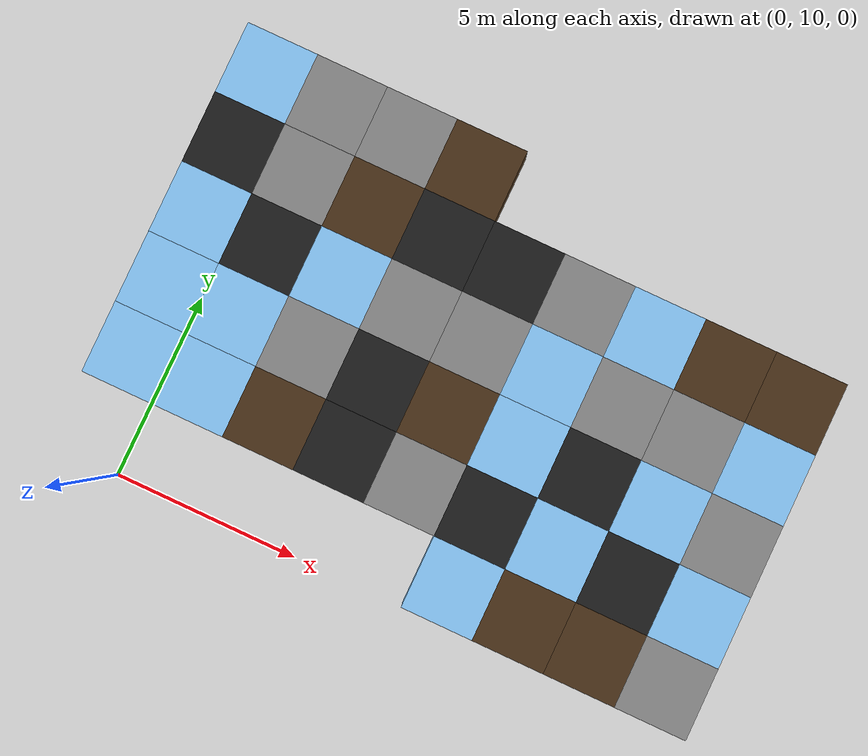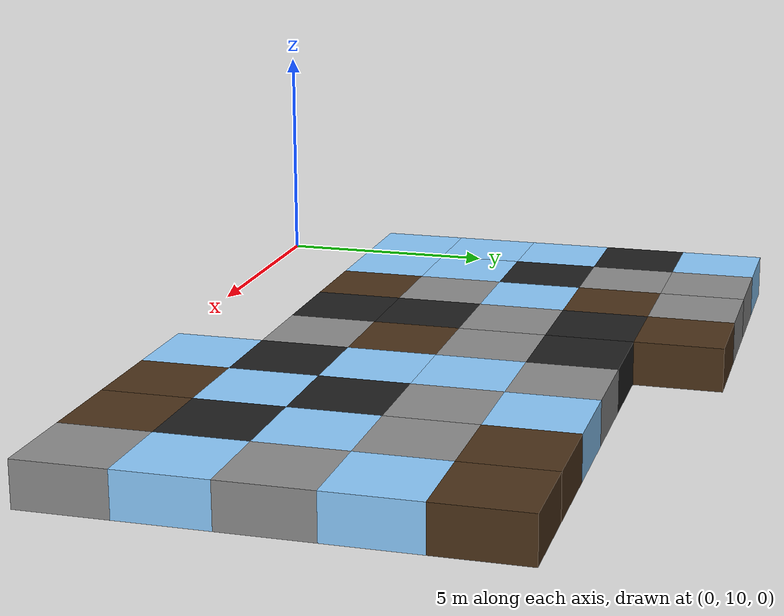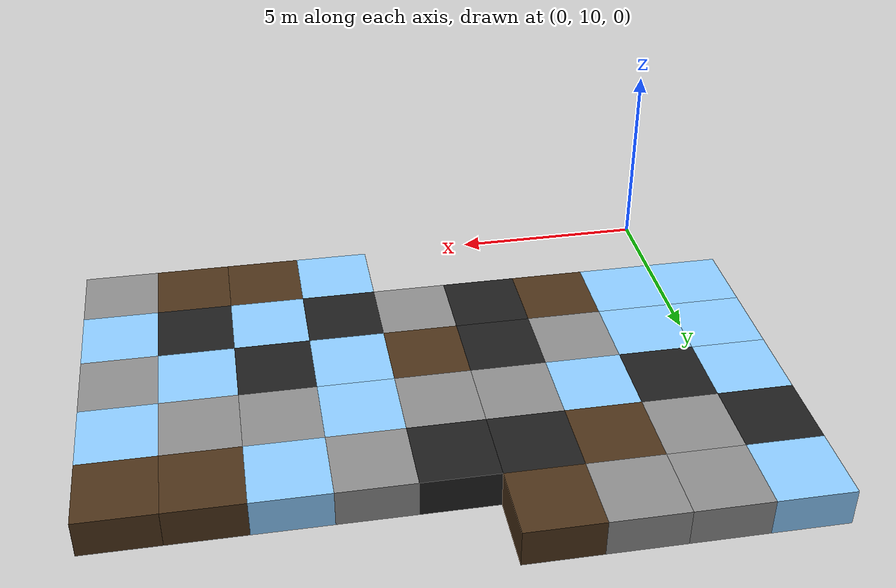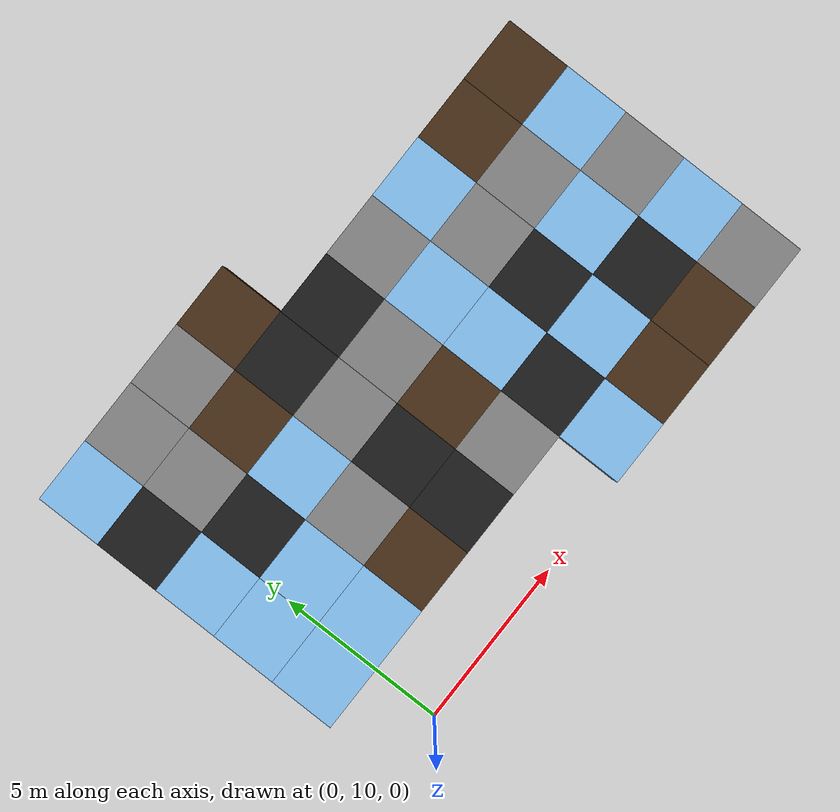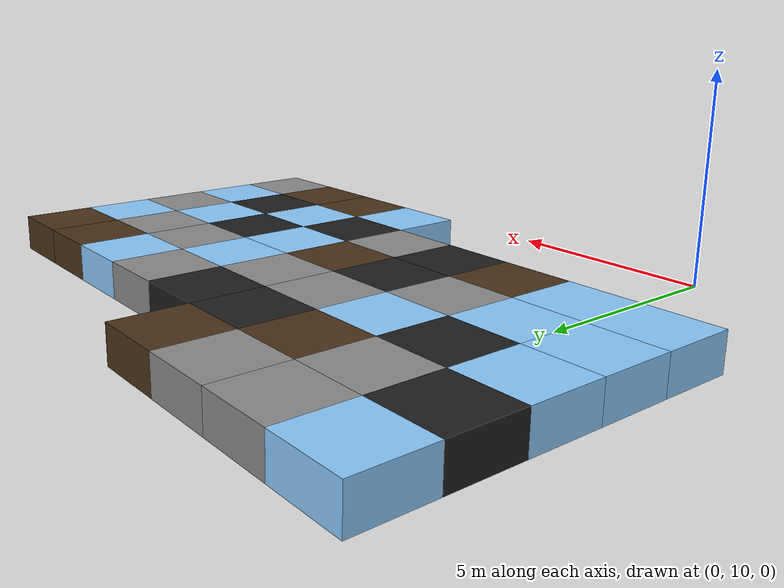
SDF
<sdf version="1.5">
 <world name="squares_example">
  <model name="tile_20_21">
   <static>true</static>
   <pose>9.000 11.000 -0.500 0 0 0</pose>
   <link name="link">
    <collision name="col">
     <geometry><box><size>2.0 2.0 1.0</size></box></geometry>
     <surface>
      <friction>
       <ode><mu>0.03</mu><mu2>0.02</mu2><fdir1>1 0 0</fdir1><slip1>0.03</slip1><slip2>0.03</slip2></ode>
       <torsional>
        <coefficient>0.005</coefficient>
        <use_patch_radius>false</use_patch_radius>
        <surface_radius>0.12</surface_radius>
        <ode><slip>0.01</slip></ode>
       </torsional>
      </friction>
      <bounce><restitution_coefficient>0.0</restitution_coefficient><threshold>0.1</threshold></bounce>
      <contact>
       <ode><kp>10000000.0</kp><kd>1000.0</kd><max_vel>0.01</max_vel><min_depth>0.0</min_depth></ode>
      </contact>
     </surface>
    </collision>
    <visual name="visual">
     <geometry><box><size>2.0 2.0 1.0</size></box></geometry>
     <material>
      <diffuse>0.55 0.80 1.00 1</diffuse>
      <ambient>0 0 0 0</ambient>
      <specular>0 0 0 1</specular>
      <emissive>0 0 0 1</emissive>
     </material>
    </visual>
   </link>
  </model>
  <model name="tile_21_21">
   <static>true</static>
   <pose>11.000 11.000 -0.500 0 0 0</pose>
   <link name="link">
    <collision name="col">
     <geometry><box><size>2.0 2.0 1.0</size></box></geometry>
     <surface>
      <friction>
       <ode><mu>0.6</mu><mu2>0.4</mu2><fdir1>1 0 0</fdir1><slip1>0.08</slip1><slip2>0.08</slip2></ode>
       <torsional>
        <coefficient>0.03</coefficient>
        <use_patch_radius>false</use_patch_radius>
        <surface_radius>0.12</surface_radius>
        <ode><slip>0.0</slip></ode>
       </torsional>
      </friction>
      <bounce><restitution_coefficient>0.0</restitution_coefficient><threshold>0.1</threshold></bounce>
      <contact>
       <ode><kp>1000000.0</kp><kd>10000.0</kd><max_vel>0.01</max_vel><min_depth>0.0</min_depth></ode>
      </contact>
     </surface>
    </collision>
    <visual name="visual">
     <geometry><box><size>2.0 2.0 1.0</size></box></geometry>
     <material>
      <diffuse>0.30 0.20 0.10 1</diffuse>
      <ambient>0 0 0 0</ambient>
      <specular>0 0 0 1</specular>
      <emissive>0 0 0 1</emissive>
     </material>
    </visual>
   </link>
  </model>
  <model name="tile_22_21">
   <static>true</static>
   <pose>13.000 11.000 -0.500 0 0 0</pose>
   <link name="link">
    <collision name="col">
     <geometry><box><size>2.0 2.0 1.0</size></box></geometry>
     <surface>
      <friction>
       <ode><mu>0.6</mu><mu2>0.4</mu2><fdir1>1 0 0</fdir1><slip1>0.08</slip1><slip2>0.08</slip2></ode>
       <torsional>
        <coefficient>0.03</coefficient>
        <use_patch_radius>false</use_patch_radius>
        <surface_radius>0.12</surface_radius>
        <ode><slip>0.0</slip></ode>
       </torsional>
      </friction>
      <bounce><restitution_coefficient>0.0</restitution_coefficient><threshold>0.1</threshold></bounce>
      <contact>
       <ode><kp>1000000.0</kp><kd>10000.0</kd><max_vel>0.01</max_vel><min_depth>0.0</min_depth></ode>
      </contact>
     </surface>
    </collision>
    <visual name="visual">
     <geometry><box><size>2.0 2.0 1.0</size></box></geometry>
     <material>
      <diffuse>0.30 0.20 0.10 1</diffuse>
      <ambient>0 0 0 0</ambient>
      <specular>0 0 0 1</specular>
      <emissive>0 0 0 1</emissive>
     </material>
    </visual>
   </link>
  </model>
  <model name="tile_23_21">
   <static>true</static>
   <pose>15.000 11.000 -0.500 0 0 0</pose>
   <link name="link">
    <collision name="col">
     <geometry><box><size>2.0 2.0 1.0</size></box></geometry>
     <surface>
      <friction>
       <ode><mu>0.8</mu><mu2>0.3</mu2><fdir1>1 0 0</fdir1><slip1>0.0</slip1><slip2>0.0</slip2></ode>
       <torsional>
        <coefficient>0.03</coefficient>
        <use_patch_radius>false</use_patch_radius>
        <surface_radius>0.12</surface_radius>
        <ode><slip>0.0</slip></ode>
       </torsional>
      </friction>
      <bounce><restitution_coefficient>0.0</restitution_coefficient><threshold>0.1</threshold></bounce>
      <contact>
       <ode><kp>10000000000.0</kp><kd>10000000.0</kd><max_vel>0.01</max_vel><min_depth>0.0</min_depth></ode>
      </contact>
     </surface>
    </collision>
    <visual name="visual">
     <geometry><box><size>2.0 2.0 1.0</size></box></geometry>
     <material>
      <diffuse>0.55 0.55 0.55 1</diffuse>
      <ambient>0 0 0 0</ambient>
      <specular>0 0 0 1</specular>
      <emissive>0 0 0 1</emissive>
     </material>
    </visual>
   </link>
  </model>
  <model name="tile_15_22">
   <static>true</static>
   <pose>-1.000 13.000 -0.500 0 0 0</pose>
   <link name="link">
    <collision name="col">
     <geometry><box><size>2.0 2.0 1.0</size></box></geometry>
     <surface>
      <friction>
       <ode><mu>0.03</mu><mu2>0.02</mu2><fdir1>1 0 0</fdir1><slip1>0.03</slip1><slip2>0.03</slip2></ode>
       <torsional>
        <coefficient>0.005</coefficient>
        <use_patch_radius>false</use_patch_radius>
        <surface_radius>0.12</surface_radius>
        <ode><slip>0.01</slip></ode>
       </torsional>
      </friction>
      <bounce><restitution_coefficient>0.0</restitution_coefficient><threshold>0.1</threshold></bounce>
      <contact>
       <ode><kp>10000000.0</kp><kd>1000.0</kd><max_vel>0.01</max_vel><min_depth>0.0</min_depth></ode>
      </contact>
     </surface>
    </collision>
    <visual name="visual">
     <geometry><box><size>2.0 2.0 1.0</size></box></geometry>
     <material>
      <diffuse>0.55 0.80 1.00 1</diffuse>
      <ambient>0 0 0 0</ambient>
      <specular>0 0 0 1</specular>
      <emissive>0 0 0 1</emissive>
     </material>
    </visual>
   </link>
  </model>
  <model name="tile_16_22">
   <static>true</static>
   <pose>1.000 13.000 -0.500 0 0 0</pose>
   <link name="link">
    <collision name="col">
     <geometry><box><size>2.0 2.0 1.0</size></box></geometry>
     <surface>
      <friction>
       <ode><mu>0.03</mu><mu2>0.02</mu2><fdir1>1 0 0</fdir1><slip1>0.03</slip1><slip2>0.03</slip2></ode>
       <torsional>
        <coefficient>0.005</coefficient>
        <use_patch_radius>false</use_patch_radius>
        <surface_radius>0.12</surface_radius>
        <ode><slip>0.01</slip></ode>
       </torsional>
      </friction>
      <bounce><restitution_coefficient>0.0</restitution_coefficient><threshold>0.1</threshold></bounce>
      <contact>
       <ode><kp>10000000.0</kp><kd>1000.0</kd><max_vel>0.01</max_vel><min_depth>0.0</min_depth></ode>
      </contact>
     </surface>
    </collision>
    <visual name="visual">
     <geometry><box><size>2.0 2.0 1.0</size></box></geometry>
     <material>
      <diffuse>0.55 0.80 1.00 1</diffuse>
      <ambient>0 0 0 0</ambient>
      <specular>0 0 0 1</specular>
      <emissive>0 0 0 1</emissive>
     </material>
    </visual>
   </link>
  </model>
  <model name="tile_17_22">
   <static>true</static>
   <pose>3.000 13.000 -0.500 0 0 0</pose>
   <link name="link">
    <collision name="col">
     <geometry><box><size>2.0 2.0 1.0</size></box></geometry>
     <surface>
      <friction>
       <ode><mu>0.6</mu><mu2>0.4</mu2><fdir1>1 0 0</fdir1><slip1>0.08</slip1><slip2>0.08</slip2></ode>
       <torsional>
        <coefficient>0.03</coefficient>
        <use_patch_radius>false</use_patch_radius>
        <surface_radius>0.12</surface_radius>
        <ode><slip>0.0</slip></ode>
       </torsional>
      </friction>
      <bounce><restitution_coefficient>0.0</restitution_coefficient><threshold>0.1</threshold></bounce>
      <contact>
       <ode><kp>1000000.0</kp><kd>10000.0</kd><max_vel>0.01</max_vel><min_depth>0.0</min_depth></ode>
      </contact>
     </surface>
    </collision>
    <visual name="visual">
     <geometry><box><size>2.0 2.0 1.0</size></box></geometry>
     <material>
      <diffuse>0.30 0.20 0.10 1</diffuse>
      <ambient>0 0 0 0</ambient>
      <specular>0 0 0 1</specular>
      <emissive>0 0 0 1</emissive>
     </material>
    </visual>
   </link>
  </model>
  <model name="tile_18_22">
   <static>true</static>
   <pose>5.000 13.000 -0.500 0 0 0</pose>
   <link name="link">
    <collision name="col">
     <geometry><box><size>2.0 2.0 1.0</size></box></geometry>
     <surface>
      <friction>
       <ode><mu>0.4</mu><mu2>0.15</mu2><fdir1>1 0 0</fdir1><slip1>0.0</slip1><slip2>0.0</slip2></ode>
       <torsional>
        <coefficient>0.03</coefficient>
        <use_patch_radius>false</use_patch_radius>
        <surface_radius>0.12</surface_radius>
        <ode><slip>0.0</slip></ode>
       </torsional>
      </friction>
      <bounce><restitution_coefficient>0.0</restitution_coefficient><threshold>0.1</threshold></bounce>
      <contact>
       <ode><kp>1000000000.0</kp><kd>1000000.0</kd><max_vel>0.01</max_vel><min_depth>0.0</min_depth></ode>
      </contact>
     </surface>
    </collision>
    <visual name="visual">
     <geometry><box><size>2.0 2.0 1.0</size></box></geometry>
     <material>
      <diffuse>0.12 0.12 0.12 1</diffuse>
      <ambient>0 0 0 0</ambient>
      <specular>0 0 0 1</specular>
      <emissive>0 0 0 1</emissive>
     </material>
    </visual>
   </link>
  </model>
  <model name="tile_19_22">
   <static>true</static>
   <pose>7.000 13.000 -0.500 0 0 0</pose>
   <link name="link">
    <collision name="col">
     <geometry><box><size>2.0 2.0 1.0</size></box></geometry>
     <surface>
      <friction>
       <ode><mu>0.8</mu><mu2>0.3</mu2><fdir1>1 0 0</fdir1><slip1>0.0</slip1><slip2>0.0</slip2></ode>
       <torsional>
        <coefficient>0.03</coefficient>
        <use_patch_radius>false</use_patch_radius>
        <surface_radius>0.12</surface_radius>
        <ode><slip>0.0</slip></ode>
       </torsional>
      </friction>
      <bounce><restitution_coefficient>0.0</restitution_coefficient><threshold>0.1</threshold></bounce>
      <contact>
       <ode><kp>10000000000.0</kp><kd>10000000.0</kd><max_vel>0.01</max_vel><min_depth>0.0</min_depth></ode>
      </contact>
     </surface>
    </collision>
    <visual name="visual">
     <geometry><box><size>2.0 2.0 1.0</size></box></geometry>
     <material>
      <diffuse>0.55 0.55 0.55 1</diffuse>
      <ambient>0 0 0 0</ambient>
      <specular>0 0 0 1</specular>
      <emissive>0 0 0 1</emissive>
     </material>
    </visual>
   </link>
  </model>
  <model name="tile_20_22">
   <static>true</static>
   <pose>9.000 13.000 -0.500 0 0 0</pose>
   <link name="link">
    <collision name="col">
     <geometry><box><size>2.0 2.0 1.0</size></box></geometry>
     <surface>
      <friction>
       <ode><mu>0.4</mu><mu2>0.15</mu2><fdir1>1 0 0</fdir1><slip1>0.0</slip1><slip2>0.0</slip2></ode>
       <torsional>
        <coefficient>0.03</coefficient>
        <use_patch_radius>false</use_patch_radius>
        <surface_radius>0.12</surface_radius>
        <ode><slip>0.0</slip></ode>
       </torsional>
      </friction>
      <bounce><restitution_coefficient>0.0</restitution_coefficient><threshold>0.1</threshold></bounce>
      <contact>
       <ode><kp>1000000000.0</kp><kd>1000000.0</kd><max_vel>0.01</max_vel><min_depth>0.0</min_depth></ode>
      </contact>
     </surface>
    </collision>
    <visual name="visual">
     <geometry><box><size>2.0 2.0 1.0</size></box></geometry>
     <material>
      <diffuse>0.12 0.12 0.12 1</diffuse>
      <ambient>0 0 0 0</ambient>
      <specular>0 0 0 1</specular>
      <emissive>0 0 0 1</emissive>
     </material>
    </visual>
   </link>
  </model>
  <model name="tile_21_22">
   <static>true</static>
   <pose>11.000 13.000 -0.500 0 0 0</pose>
   <link name="link">
    <collision name="col">
     <geometry><box><size>2.0 2.0 1.0</size></box></geometry>
     <surface>
      <friction>
       <ode><mu>0.03</mu><mu2>0.02</mu2><fdir1>1 0 0</fdir1><slip1>0.03</slip1><slip2>0.03</slip2></ode>
       <torsional>
        <coefficient>0.005</coefficient>
        <use_patch_radius>false</use_patch_radius>
        <surface_radius>0.12</surface_radius>
        <ode><slip>0.01</slip></ode>
       </torsional>
      </friction>
      <bounce><restitution_coefficient>0.0</restitution_coefficient><threshold>0.1</threshold></bounce>
      <contact>
       <ode><kp>10000000.0</kp><kd>1000.0</kd><max_vel>0.01</max_vel><min_depth>0.0</min_depth></ode>
      </contact>
     </surface>
    </collision>
    <visual name="visual">
     <geometry><box><size>2.0 2.0 1.0</size></box></geometry>
     <material>
      <diffuse>0.55 0.80 1.00 1</diffuse>
      <ambient>0 0 0 0</ambient>
      <specular>0 0 0 1</specular>
      <emissive>0 0 0 1</emissive>
     </material>
    </visual>
   </link>
  </model>
  <model name="tile_22_22">
   <static>true</static>
   <pose>13.000 13.000 -0.500 0 0 0</pose>
   <link name="link">
    <collision name="col">
     <geometry><box><size>2.0 2.0 1.0</size></box></geometry>
     <surface>
      <friction>
       <ode><mu>0.4</mu><mu2>0.15</mu2><fdir1>1 0 0</fdir1><slip1>0.0</slip1><slip2>0.0</slip2></ode>
       <torsional>
        <coefficient>0.03</coefficient>
        <use_patch_radius>false</use_patch_radius>
        <surface_radius>0.12</surface_radius>
        <ode><slip>0.0</slip></ode>
       </torsional>
      </friction>
      <bounce><restitution_coefficient>0.0</restitution_coefficient><threshold>0.1</threshold></bounce>
      <contact>
       <ode><kp>1000000000.0</kp><kd>1000000.0</kd><max_vel>0.01</max_vel><min_depth>0.0</min_depth></ode>
      </contact>
     </surface>
    </collision>
    <visual name="visual">
     <geometry><box><size>2.0 2.0 1.0</size></box></geometry>
     <material>
      <diffuse>0.12 0.12 0.12 1</diffuse>
      <ambient>0 0 0 0</ambient>
      <specular>0 0 0 1</specular>
      <emissive>0 0 0 1</emissive>
     </material>
    </visual>
   </link>
  </model>
  <model name="tile_23_22">
   <static>true</static>
   <pose>15.000 13.000 -0.500 0 0 0</pose>
   <link name="link">
    <collision name="col">
     <geometry><box><size>2.0 2.0 1.0</size></box></geometry>
     <surface>
      <friction>
       <ode><mu>0.03</mu><mu2>0.02</mu2><fdir1>1 0 0</fdir1><slip1>0.03</slip1><slip2>0.03</slip2></ode>
       <torsional>
        <coefficient>0.005</coefficient>
        <use_patch_radius>false</use_patch_radius>
        <surface_radius>0.12</surface_radius>
        <ode><slip>0.01</slip></ode>
       </torsional>
      </friction>
      <bounce><restitution_coefficient>0.0</restitution_coefficient><threshold>0.1</threshold></bounce>
      <contact>
       <ode><kp>10000000.0</kp><kd>1000.0</kd><max_vel>0.01</max_vel><min_depth>0.0</min_depth></ode>
      </contact>
     </surface>
    </collision>
    <visual name="visual">
     <geometry><box><size>2.0 2.0 1.0</size></box></geometry>
     <material>
      <diffuse>0.55 0.80 1.00 1</diffuse>
      <ambient>0 0 0 0</ambient>
      <specular>0 0 0 1</specular>
      <emissive>0 0 0 1</emissive>
     </material>
    </visual>
   </link>
  </model>
  <model name="tile_15_23">
   <static>true</static>
   <pose>-1.000 15.000 -0.500 0 0 0</pose>
   <link name="link">
    <collision name="col">
     <geometry><box><size>2.0 2.0 1.0</size></box></geometry>
     <surface>
      <friction>
       <ode><mu>0.03</mu><mu2>0.02</mu2><fdir1>1 0 0</fdir1><slip1>0.03</slip1><slip2>0.03</slip2></ode>
       <torsional>
        <coefficient>0.005</coefficient>
        <use_patch_radius>false</use_patch_radius>
        <surface_radius>0.12</surface_radius>
        <ode><slip>0.01</slip></ode>
       </torsional>
      </friction>
      <bounce><restitution_coefficient>0.0</restitution_coefficient><threshold>0.1</threshold></bounce>
      <contact>
       <ode><kp>10000000.0</kp><kd>1000.0</kd><max_vel>0.01</max_vel><min_depth>0.0</min_depth></ode>
      </contact>
     </surface>
    </collision>
    <visual name="visual">
     <geometry><box><size>2.0 2.0 1.0</size></box></geometry>
     <material>
      <diffuse>0.55 0.80 1.00 1</diffuse>
      <ambient>0 0 0 0</ambient>
      <specular>0 0 0 1</specular>
      <emissive>0 0 0 1</emissive>
     </material>
    </visual>
   </link>
  </model>
  <model name="tile_16_23">
   <static>true</static>
   <pose>1.000 15.000 -0.500 0 0 0</pose>
   <link name="link">
    <collision name="col">
     <geometry><box><size>2.0 2.0 1.0</size></box></geometry>
     <surface>
      <friction>
       <ode><mu>0.03</mu><mu2>0.02</mu2><fdir1>1 0 0</fdir1><slip1>0.03</slip1><slip2>0.03</slip2></ode>
       <torsional>
        <coefficient>0.005</coefficient>
        <use_patch_radius>false</use_patch_radius>
        <surface_radius>0.12</surface_radius>
        <ode><slip>0.01</slip></ode>
       </torsional>
      </friction>
      <bounce><restitution_coefficient>0.0</restitution_coefficient><threshold>0.1</threshold></bounce>
      <contact>
       <ode><kp>10000000.0</kp><kd>1000.0</kd><max_vel>0.01</max_vel><min_depth>0.0</min_depth></ode>
      </contact>
     </surface>
    </collision>
    <visual name="visual">
     <geometry><box><size>2.0 2.0 1.0</size></box></geometry>
     <material>
      <diffuse>0.55 0.80 1.00 1</diffuse>
      <ambient>0 0 0 0</ambient>
      <specular>0 0 0 1</specular>
      <emissive>0 0 0 1</emissive>
     </material>
    </visual>
   </link>
  </model>
  <model name="tile_17_23">
   <static>true</static>
   <pose>3.000 15.000 -0.500 0 0 0</pose>
   <link name="link">
    <collision name="col">
     <geometry><box><size>2.0 2.0 1.0</size></box></geometry>
     <surface>
      <friction>
       <ode><mu>0.8</mu><mu2>0.3</mu2><fdir1>1 0 0</fdir1><slip1>0.0</slip1><slip2>0.0</slip2></ode>
       <torsional>
        <coefficient>0.03</coefficient>
        <use_patch_radius>false</use_patch_radius>
        <surface_radius>0.12</surface_radius>
        <ode><slip>0.0</slip></ode>
       </torsional>
      </friction>
      <bounce><restitution_coefficient>0.0</restitution_coefficient><threshold>0.1</threshold></bounce>
      <contact>
       <ode><kp>10000000000.0</kp><kd>10000000.0</kd><max_vel>0.01</max_vel><min_depth>0.0</min_depth></ode>
      </contact>
     </surface>
    </collision>
    <visual name="visual">
     <geometry><box><size>2.0 2.0 1.0</size></box></geometry>
     <material>
      <diffuse>0.55 0.55 0.55 1</diffuse>
      <ambient>0 0 0 0</ambient>
      <specular>0 0 0 1</specular>
      <emissive>0 0 0 1</emissive>
     </material>
    </visual>
   </link>
  </model>
  <model name="tile_18_23">
   <static>true</static>
   <pose>5.000 15.000 -0.500 0 0 0</pose>
   <link name="link">
    <collision name="col">
     <geometry><box><size>2.0 2.0 1.0</size></box></geometry>
     <surface>
      <friction>
       <ode><mu>0.4</mu><mu2>0.15</mu2><fdir1>1 0 0</fdir1><slip1>0.0</slip1><slip2>0.0</slip2></ode>
       <torsional>
        <coefficient>0.03</coefficient>
        <use_patch_radius>false</use_patch_radius>
        <surface_radius>0.12</surface_radius>
        <ode><slip>0.0</slip></ode>
       </torsional>
      </friction>
      <bounce><restitution_coefficient>0.0</restitution_coefficient><threshold>0.1</threshold></bounce>
      <contact>
       <ode><kp>1000000000.0</kp><kd>1000000.0</kd><max_vel>0.01</max_vel><min_depth>0.0</min_depth></ode>
      </contact>
     </surface>
    </collision>
    <visual name="visual">
     <geometry><box><size>2.0 2.0 1.0</size></box></geometry>
     <material>
      <diffuse>0.12 0.12 0.12 1</diffuse>
      <ambient>0 0 0 0</ambient>
      <specular>0 0 0 1</specular>
      <emissive>0 0 0 1</emissive>
     </material>
    </visual>
   </link>
  </model>
  <model name="tile_19_23">
   <static>true</static>
   <pose>7.000 15.000 -0.500 0 0 0</pose>
   <link name="link">
    <collision name="col">
     <geometry><box><size>2.0 2.0 1.0</size></box></geometry>
     <surface>
      <friction>
       <ode><mu>0.6</mu><mu2>0.4</mu2><fdir1>1 0 0</fdir1><slip1>0.08</slip1><slip2>0.08</slip2></ode>
       <torsional>
        <coefficient>0.03</coefficient>
        <use_patch_radius>false</use_patch_radius>
        <surface_radius>0.12</surface_radius>
        <ode><slip>0.0</slip></ode>
       </torsional>
      </friction>
      <bounce><restitution_coefficient>0.0</restitution_coefficient><threshold>0.1</threshold></bounce>
      <contact>
       <ode><kp>1000000.0</kp><kd>10000.0</kd><max_vel>0.01</max_vel><min_depth>0.0</min_depth></ode>
      </contact>
     </surface>
    </collision>
    <visual name="visual">
     <geometry><box><size>2.0 2.0 1.0</size></box></geometry>
     <material>
      <diffuse>0.30 0.20 0.10 1</diffuse>
      <ambient>0 0 0 0</ambient>
      <specular>0 0 0 1</specular>
      <emissive>0 0 0 1</emissive>
     </material>
    </visual>
   </link>
  </model>
  <model name="tile_20_23">
   <static>true</static>
   <pose>9.000 15.000 -0.500 0 0 0</pose>
   <link name="link">
    <collision name="col">
     <geometry><box><size>2.0 2.0 1.0</size></box></geometry>
     <surface>
      <friction>
       <ode><mu>0.03</mu><mu2>0.02</mu2><fdir1>1 0 0</fdir1><slip1>0.03</slip1><slip2>0.03</slip2></ode>
       <torsional>
        <coefficient>0.005</coefficient>
        <use_patch_radius>false</use_patch_radius>
        <surface_radius>0.12</surface_radius>
        <ode><slip>0.01</slip></ode>
       </torsional>
      </friction>
      <bounce><restitution_coefficient>0.0</restitution_coefficient><threshold>0.1</threshold></bounce>
      <contact>
       <ode><kp>10000000.0</kp><kd>1000.0</kd><max_vel>0.01</max_vel><min_depth>0.0</min_depth></ode>
      </contact>
     </surface>
    </collision>
    <visual name="visual">
     <geometry><box><size>2.0 2.0 1.0</size></box></geometry>
     <material>
      <diffuse>0.55 0.80 1.00 1</diffuse>
      <ambient>0 0 0 0</ambient>
      <specular>0 0 0 1</specular>
      <emissive>0 0 0 1</emissive>
     </material>
    </visual>
   </link>
  </model>
  <model name="tile_21_23">
   <static>true</static>
   <pose>11.000 15.000 -0.500 0 0 0</pose>
   <link name="link">
    <collision name="col">
     <geometry><box><size>2.0 2.0 1.0</size></box></geometry>
     <surface>
      <friction>
       <ode><mu>0.4</mu><mu2>0.15</mu2><fdir1>1 0 0</fdir1><slip1>0.0</slip1><slip2>0.0</slip2></ode>
       <torsional>
        <coefficient>0.03</coefficient>
        <use_patch_radius>false</use_patch_radius>
        <surface_radius>0.12</surface_radius>
        <ode><slip>0.0</slip></ode>
       </torsional>
      </friction>
      <bounce><restitution_coefficient>0.0</restitution_coefficient><threshold>0.1</threshold></bounce>
      <contact>
       <ode><kp>1000000000.0</kp><kd>1000000.0</kd><max_vel>0.01</max_vel><min_depth>0.0</min_depth></ode>
      </contact>
     </surface>
    </collision>
    <visual name="visual">
     <geometry><box><size>2.0 2.0 1.0</size></box></geometry>
     <material>
      <diffuse>0.12 0.12 0.12 1</diffuse>
      <ambient>0 0 0 0</ambient>
      <specular>0 0 0 1</specular>
      <emissive>0 0 0 1</emissive>
     </material>
    </visual>
   </link>
  </model>
  <model name="tile_22_23">
   <static>true</static>
   <pose>13.000 15.000 -0.500 0 0 0</pose>
   <link name="link">
    <collision name="col">
     <geometry><box><size>2.0 2.0 1.0</size></box></geometry>
     <surface>
      <friction>
       <ode><mu>0.03</mu><mu2>0.02</mu2><fdir1>1 0 0</fdir1><slip1>0.03</slip1><slip2>0.03</slip2></ode>
       <torsional>
        <coefficient>0.005</coefficient>
        <use_patch_radius>false</use_patch_radius>
        <surface_radius>0.12</surface_radius>
        <ode><slip>0.01</slip></ode>
       </torsional>
      </friction>
      <bounce><restitution_coefficient>0.0</restitution_coefficient><threshold>0.1</threshold></bounce>
      <contact>
       <ode><kp>10000000.0</kp><kd>1000.0</kd><max_vel>0.01</max_vel><min_depth>0.0</min_depth></ode>
      </contact>
     </surface>
    </collision>
    <visual name="visual">
     <geometry><box><size>2.0 2.0 1.0</size></box></geometry>
     <material>
      <diffuse>0.55 0.80 1.00 1</diffuse>
      <ambient>0 0 0 0</ambient>
      <specular>0 0 0 1</specular>
      <emissive>0 0 0 1</emissive>
     </material>
    </visual>
   </link>
  </model>
  <model name="tile_23_23">
   <static>true</static>
   <pose>15.000 15.000 -0.500 0 0 0</pose>
   <link name="link">
    <collision name="col">
     <geometry><box><size>2.0 2.0 1.0</size></box></geometry>
     <surface>
      <friction>
       <ode><mu>0.8</mu><mu2>0.3</mu2><fdir1>1 0 0</fdir1><slip1>0.0</slip1><slip2>0.0</slip2></ode>
       <torsional>
        <coefficient>0.03</coefficient>
        <use_patch_radius>false</use_patch_radius>
        <surface_radius>0.12</surface_radius>
        <ode><slip>0.0</slip></ode>
       </torsional>
      </friction>
      <bounce><restitution_coefficient>0.0</restitution_coefficient><threshold>0.1</threshold></bounce>
      <contact>
       <ode><kp>10000000000.0</kp><kd>10000000.0</kd><max_vel>0.01</max_vel><min_depth>0.0</min_depth></ode>
      </contact>
     </surface>
    </collision>
    <visual name="visual">
     <geometry><box><size>2.0 2.0 1.0</size></box></geometry>
     <material>
      <diffuse>0.55 0.55 0.55 1</diffuse>
      <ambient>0 0 0 0</ambient>
      <specular>0 0 0 1</specular>
      <emissive>0 0 0 1</emissive>
     </material>
    </visual>
   </link>
  </model>
  <model name="tile_15_24">
   <static>true</static>
   <pose>-1.000 17.000 -0.500 0 0 0</pose>
   <link name="link">
    <collision name="col">
     <geometry><box><size>2.0 2.0 1.0</size></box></geometry>
     <surface>
      <friction>
       <ode><mu>0.03</mu><mu2>0.02</mu2><fdir1>1 0 0</fdir1><slip1>0.03</slip1><slip2>0.03</slip2></ode>
       <torsional>
        <coefficient>0.005</coefficient>
        <use_patch_radius>false</use_patch_radius>
        <surface_radius>0.12</surface_radius>
        <ode><slip>0.01</slip></ode>
       </torsional>
      </friction>
      <bounce><restitution_coefficient>0.0</restitution_coefficient><threshold>0.1</threshold></bounce>
      <contact>
       <ode><kp>10000000.0</kp><kd>1000.0</kd><max_vel>0.01</max_vel><min_depth>0.0</min_depth></ode>
      </contact>
     </surface>
    </collision>
    <visual name="visual">
     <geometry><box><size>2.0 2.0 1.0</size></box></geometry>
     <material>
      <diffuse>0.55 0.80 1.00 1</diffuse>
      <ambient>0 0 0 0</ambient>
      <specular>0 0 0 1</specular>
      <emissive>0 0 0 1</emissive>
     </material>
    </visual>
   </link>
  </model>
  <model name="tile_16_24">
   <static>true</static>
   <pose>1.000 17.000 -0.500 0 0 0</pose>
   <link name="link">
    <collision name="col">
     <geometry><box><size>2.0 2.0 1.0</size></box></geometry>
     <surface>
      <friction>
       <ode><mu>0.4</mu><mu2>0.15</mu2><fdir1>1 0 0</fdir1><slip1>0.0</slip1><slip2>0.0</slip2></ode>
       <torsional>
        <coefficient>0.03</coefficient>
        <use_patch_radius>false</use_patch_radius>
        <surface_radius>0.12</surface_radius>
        <ode><slip>0.0</slip></ode>
       </torsional>
      </friction>
      <bounce><restitution_coefficient>0.0</restitution_coefficient><threshold>0.1</threshold></bounce>
      <contact>
       <ode><kp>1000000000.0</kp><kd>1000000.0</kd><max_vel>0.01</max_vel><min_depth>0.0</min_depth></ode>
      </contact>
     </surface>
    </collision>
    <visual name="visual">
     <geometry><box><size>2.0 2.0 1.0</size></box></geometry>
     <material>
      <diffuse>0.12 0.12 0.12 1</diffuse>
      <ambient>0 0 0 0</ambient>
      <specular>0 0 0 1</specular>
      <emissive>0 0 0 1</emissive>
     </material>
    </visual>
   </link>
  </model>
  <model name="tile_17_24">
   <static>true</static>
   <pose>3.000 17.000 -0.500 0 0 0</pose>
   <link name="link">
    <collision name="col">
     <geometry><box><size>2.0 2.0 1.0</size></box></geometry>
     <surface>
      <friction>
       <ode><mu>0.03</mu><mu2>0.02</mu2><fdir1>1 0 0</fdir1><slip1>0.03</slip1><slip2>0.03</slip2></ode>
       <torsional>
        <coefficient>0.005</coefficient>
        <use_patch_radius>false</use_patch_radius>
        <surface_radius>0.12</surface_radius>
        <ode><slip>0.01</slip></ode>
       </torsional>
      </friction>
      <bounce><restitution_coefficient>0.0</restitution_coefficient><threshold>0.1</threshold></bounce>
      <contact>
       <ode><kp>10000000.0</kp><kd>1000.0</kd><max_vel>0.01</max_vel><min_depth>0.0</min_depth></ode>
      </contact>
     </surface>
    </collision>
    <visual name="visual">
     <geometry><box><size>2.0 2.0 1.0</size></box></geometry>
     <material>
      <diffuse>0.55 0.80 1.00 1</diffuse>
      <ambient>0 0 0 0</ambient>
      <specular>0 0 0 1</specular>
      <emissive>0 0 0 1</emissive>
     </material>
    </visual>
   </link>
  </model>
  <model name="tile_18_24">
   <static>true</static>
   <pose>5.000 17.000 -0.500 0 0 0</pose>
   <link name="link">
    <collision name="col">
     <geometry><box><size>2.0 2.0 1.0</size></box></geometry>
     <surface>
      <friction>
       <ode><mu>0.8</mu><mu2>0.3</mu2><fdir1>1 0 0</fdir1><slip1>0.0</slip1><slip2>0.0</slip2></ode>
       <torsional>
        <coefficient>0.03</coefficient>
        <use_patch_radius>false</use_patch_radius>
        <surface_radius>0.12</surface_radius>
        <ode><slip>0.0</slip></ode>
       </torsional>
      </friction>
      <bounce><restitution_coefficient>0.0</restitution_coefficient><threshold>0.1</threshold></bounce>
      <contact>
       <ode><kp>10000000000.0</kp><kd>10000000.0</kd><max_vel>0.01</max_vel><min_depth>0.0</min_depth></ode>
      </contact>
     </surface>
    </collision>
    <visual name="visual">
     <geometry><box><size>2.0 2.0 1.0</size></box></geometry>
     <material>
      <diffuse>0.55 0.55 0.55 1</diffuse>
      <ambient>0 0 0 0</ambient>
      <specular>0 0 0 1</specular>
      <emissive>0 0 0 1</emissive>
     </material>
    </visual>
   </link>
  </model>
  <model name="tile_19_24">
   <static>true</static>
   <pose>7.000 17.000 -0.500 0 0 0</pose>
   <link name="link">
    <collision name="col">
     <geometry><box><size>2.0 2.0 1.0</size></box></geometry>
     <surface>
      <friction>
       <ode><mu>0.8</mu><mu2>0.3</mu2><fdir1>1 0 0</fdir1><slip1>0.0</slip1><slip2>0.0</slip2></ode>
       <torsional>
        <coefficient>0.03</coefficient>
        <use_patch_radius>false</use_patch_radius>
        <surface_radius>0.12</surface_radius>
        <ode><slip>0.0</slip></ode>
       </torsional>
      </friction>
      <bounce><restitution_coefficient>0.0</restitution_coefficient><threshold>0.1</threshold></bounce>
      <contact>
       <ode><kp>10000000000.0</kp><kd>10000000.0</kd><max_vel>0.01</max_vel><min_depth>0.0</min_depth></ode>
      </contact>
     </surface>
    </collision>
    <visual name="visual">
     <geometry><box><size>2.0 2.0 1.0</size></box></geometry>
     <material>
      <diffuse>0.55 0.55 0.55 1</diffuse>
      <ambient>0 0 0 0</ambient>
      <specular>0 0 0 1</specular>
      <emissive>0 0 0 1</emissive>
     </material>
    </visual>
   </link>
  </model>
  <model name="tile_20_24">
   <static>true</static>
   <pose>9.000 17.000 -0.500 0 0 0</pose>
   <link name="link">
    <collision name="col">
     <geometry><box><size>2.0 2.0 1.0</size></box></geometry>
     <surface>
      <friction>
       <ode><mu>0.03</mu><mu2>0.02</mu2><fdir1>1 0 0</fdir1><slip1>0.03</slip1><slip2>0.03</slip2></ode>
       <torsional>
        <coefficient>0.005</coefficient>
        <use_patch_radius>false</use_patch_radius>
        <surface_radius>0.12</surface_radius>
        <ode><slip>0.01</slip></ode>
       </torsional>
      </friction>
      <bounce><restitution_coefficient>0.0</restitution_coefficient><threshold>0.1</threshold></bounce>
      <contact>
       <ode><kp>10000000.0</kp><kd>1000.0</kd><max_vel>0.01</max_vel><min_depth>0.0</min_depth></ode>
      </contact>
     </surface>
    </collision>
    <visual name="visual">
     <geometry><box><size>2.0 2.0 1.0</size></box></geometry>
     <material>
      <diffuse>0.55 0.80 1.00 1</diffuse>
      <ambient>0 0 0 0</ambient>
      <specular>0 0 0 1</specular>
      <emissive>0 0 0 1</emissive>
     </material>
    </visual>
   </link>
  </model>
  <model name="tile_21_24">
   <static>true</static>
   <pose>11.000 17.000 -0.500 0 0 0</pose>
   <link name="link">
    <collision name="col">
     <geometry><box><size>2.0 2.0 1.0</size></box></geometry>
     <surface>
      <friction>
       <ode><mu>0.8</mu><mu2>0.3</mu2><fdir1>1 0 0</fdir1><slip1>0.0</slip1><slip2>0.0</slip2></ode>
       <torsional>
        <coefficient>0.03</coefficient>
        <use_patch_radius>false</use_patch_radius>
        <surface_radius>0.12</surface_radius>
        <ode><slip>0.0</slip></ode>
       </torsional>
      </friction>
      <bounce><restitution_coefficient>0.0</restitution_coefficient><threshold>0.1</threshold></bounce>
      <contact>
       <ode><kp>10000000000.0</kp><kd>10000000.0</kd><max_vel>0.01</max_vel><min_depth>0.0</min_depth></ode>
      </contact>
     </surface>
    </collision>
    <visual name="visual">
     <geometry><box><size>2.0 2.0 1.0</size></box></geometry>
     <material>
      <diffuse>0.55 0.55 0.55 1</diffuse>
      <ambient>0 0 0 0</ambient>
      <specular>0 0 0 1</specular>
      <emissive>0 0 0 1</emissive>
     </material>
    </visual>
   </link>
  </model>
  <model name="tile_22_24">
   <static>true</static>
   <pose>13.000 17.000 -0.500 0 0 0</pose>
   <link name="link">
    <collision name="col">
     <geometry><box><size>2.0 2.0 1.0</size></box></geometry>
     <surface>
      <friction>
       <ode><mu>0.8</mu><mu2>0.3</mu2><fdir1>1 0 0</fdir1><slip1>0.0</slip1><slip2>0.0</slip2></ode>
       <torsional>
        <coefficient>0.03</coefficient>
        <use_patch_radius>false</use_patch_radius>
        <surface_radius>0.12</surface_radius>
        <ode><slip>0.0</slip></ode>
       </torsional>
      </friction>
      <bounce><restitution_coefficient>0.0</restitution_coefficient><threshold>0.1</threshold></bounce>
      <contact>
       <ode><kp>10000000000.0</kp><kd>10000000.0</kd><max_vel>0.01</max_vel><min_depth>0.0</min_depth></ode>
      </contact>
     </surface>
    </collision>
    <visual name="visual">
     <geometry><box><size>2.0 2.0 1.0</size></box></geometry>
     <material>
      <diffuse>0.55 0.55 0.55 1</diffuse>
      <ambient>0 0 0 0</ambient>
      <specular>0 0 0 1</specular>
      <emissive>0 0 0 1</emissive>
     </material>
    </visual>
   </link>
  </model>
  <model name="tile_23_24">
   <static>true</static>
   <pose>15.000 17.000 -0.500 0 0 0</pose>
   <link name="link">
    <collision name="col">
     <geometry><box><size>2.0 2.0 1.0</size></box></geometry>
     <surface>
      <friction>
       <ode><mu>0.03</mu><mu2>0.02</mu2><fdir1>1 0 0</fdir1><slip1>0.03</slip1><slip2>0.03</slip2></ode>
       <torsional>
        <coefficient>0.005</coefficient>
        <use_patch_radius>false</use_patch_radius>
        <surface_radius>0.12</surface_radius>
        <ode><slip>0.01</slip></ode>
       </torsional>
      </friction>
      <bounce><restitution_coefficient>0.0</restitution_coefficient><threshold>0.1</threshold></bounce>
      <contact>
       <ode><kp>10000000.0</kp><kd>1000.0</kd><max_vel>0.01</max_vel><min_depth>0.0</min_depth></ode>
      </contact>
     </surface>
    </collision>
    <visual name="visual">
     <geometry><box><size>2.0 2.0 1.0</size></box></geometry>
     <material>
      <diffuse>0.55 0.80 1.00 1</diffuse>
      <ambient>0 0 0 0</ambient>
      <specular>0 0 0 1</specular>
      <emissive>0 0 0 1</emissive>
     </material>
    </visual>
   </link>
  </model>
  <model name="tile_15_25">
   <static>true</static>
   <pose>-1.000 19.000 -0.500 0 0 0</pose>
   <link name="link">
    <collision name="col">
     <geometry><box><size>2.0 2.0 1.0</size></box></geometry>
     <surface>
      <friction>
       <ode><mu>0.4</mu><mu2>0.15</mu2><fdir1>1 0 0</fdir1><slip1>0.0</slip1><slip2>0.0</slip2></ode>
       <torsional>
        <coefficient>0.03</coefficient>
        <use_patch_radius>false</use_patch_radius>
        <surface_radius>0.12</surface_radius>
        <ode><slip>0.0</slip></ode>
       </torsional>
      </friction>
      <bounce><restitution_coefficient>0.0</restitution_coefficient><threshold>0.1</threshold></bounce>
      <contact>
       <ode><kp>1000000000.0</kp><kd>1000000.0</kd><max_vel>0.01</max_vel><min_depth>0.0</min_depth></ode>
      </contact>
     </surface>
    </collision>
    <visual name="visual">
     <geometry><box><size>2.0 2.0 1.0</size></box></geometry>
     <material>
      <diffuse>0.12 0.12 0.12 1</diffuse>
      <ambient>0 0 0 0</ambient>
      <specular>0 0 0 1</specular>
      <emissive>0 0 0 1</emissive>
     </material>
    </visual>
   </link>
  </model>
  <model name="tile_16_25">
   <static>true</static>
   <pose>1.000 19.000 -0.500 0 0 0</pose>
   <link name="link">
    <collision name="col">
     <geometry><box><size>2.0 2.0 1.0</size></box></geometry>
     <surface>
      <friction>
       <ode><mu>0.8</mu><mu2>0.3</mu2><fdir1>1 0 0</fdir1><slip1>0.0</slip1><slip2>0.0</slip2></ode>
       <torsional>
        <coefficient>0.03</coefficient>
        <use_patch_radius>false</use_patch_radius>
        <surface_radius>0.12</surface_radius>
        <ode><slip>0.0</slip></ode>
       </torsional>
      </friction>
      <bounce><restitution_coefficient>0.0</restitution_coefficient><threshold>0.1</threshold></bounce>
      <contact>
       <ode><kp>10000000000.0</kp><kd>10000000.0</kd><max_vel>0.01</max_vel><min_depth>0.0</min_depth></ode>
      </contact>
     </surface>
    </collision>
    <visual name="visual">
     <geometry><box><size>2.0 2.0 1.0</size></box></geometry>
     <material>
      <diffuse>0.55 0.55 0.55 1</diffuse>
      <ambient>0 0 0 0</ambient>
      <specular>0 0 0 1</specular>
      <emissive>0 0 0 1</emissive>
     </material>
    </visual>
   </link>
  </model>
  <model name="tile_17_25">
   <static>true</static>
   <pose>3.000 19.000 -0.500 0 0 0</pose>
   <link name="link">
    <collision name="col">
     <geometry><box><size>2.0 2.0 1.0</size></box></geometry>
     <surface>
      <friction>
       <ode><mu>0.6</mu><mu2>0.4</mu2><fdir1>1 0 0</fdir1><slip1>0.08</slip1><slip2>0.08</slip2></ode>
       <torsional>
        <coefficient>0.03</coefficient>
        <use_patch_radius>false</use_patch_radius>
        <surface_radius>0.12</surface_radius>
        <ode><slip>0.0</slip></ode>
       </torsional>
      </friction>
      <bounce><restitution_coefficient>0.0</restitution_coefficient><threshold>0.1</threshold></bounce>
      <contact>
       <ode><kp>1000000.0</kp><kd>10000.0</kd><max_vel>0.01</max_vel><min_depth>0.0</min_depth></ode>
      </contact>
     </surface>
    </collision>
    <visual name="visual">
     <geometry><box><size>2.0 2.0 1.0</size></box></geometry>
     <material>
      <diffuse>0.30 0.20 0.10 1</diffuse>
      <ambient>0 0 0 0</ambient>
      <specular>0 0 0 1</specular>
      <emissive>0 0 0 1</emissive>
     </material>
    </visual>
   </link>
  </model>
  <model name="tile_18_25">
   <static>true</static>
   <pose>5.000 19.000 -0.500 0 0 0</pose>
   <link name="link">
    <collision name="col">
     <geometry><box><size>2.0 2.0 1.0</size></box></geometry>
     <surface>
      <friction>
       <ode><mu>0.4</mu><mu2>0.15</mu2><fdir1>1 0 0</fdir1><slip1>0.0</slip1><slip2>0.0</slip2></ode>
       <torsional>
        <coefficient>0.03</coefficient>
        <use_patch_radius>false</use_patch_radius>
        <surface_radius>0.12</surface_radius>
        <ode><slip>0.0</slip></ode>
       </torsional>
      </friction>
      <bounce><restitution_coefficient>0.0</restitution_coefficient><threshold>0.1</threshold></bounce>
      <contact>
       <ode><kp>1000000000.0</kp><kd>1000000.0</kd><max_vel>0.01</max_vel><min_depth>0.0</min_depth></ode>
      </contact>
     </surface>
    </collision>
    <visual name="visual">
     <geometry><box><size>2.0 2.0 1.0</size></box></geometry>
     <material>
      <diffuse>0.12 0.12 0.12 1</diffuse>
      <ambient>0 0 0 0</ambient>
      <specular>0 0 0 1</specular>
      <emissive>0 0 0 1</emissive>
     </material>
    </visual>
   </link>
  </model>
  <model name="tile_19_25">
   <static>true</static>
   <pose>7.000 19.000 -0.500 0 0 0</pose>
   <link name="link">
    <collision name="col">
     <geometry><box><size>2.0 2.0 1.0</size></box></geometry>
     <surface>
      <friction>
       <ode><mu>0.4</mu><mu2>0.15</mu2><fdir1>1 0 0</fdir1><slip1>0.0</slip1><slip2>0.0</slip2></ode>
       <torsional>
        <coefficient>0.03</coefficient>
        <use_patch_radius>false</use_patch_radius>
        <surface_radius>0.12</surface_radius>
        <ode><slip>0.0</slip></ode>
       </torsional>
      </friction>
      <bounce><restitution_coefficient>0.0</restitution_coefficient><threshold>0.1</threshold></bounce>
      <contact>
       <ode><kp>1000000000.0</kp><kd>1000000.0</kd><max_vel>0.01</max_vel><min_depth>0.0</min_depth></ode>
      </contact>
     </surface>
    </collision>
    <visual name="visual">
     <geometry><box><size>2.0 2.0 1.0</size></box></geometry>
     <material>
      <diffuse>0.12 0.12 0.12 1</diffuse>
      <ambient>0 0 0 0</ambient>
      <specular>0 0 0 1</specular>
      <emissive>0 0 0 1</emissive>
     </material>
    </visual>
   </link>
  </model>
  <model name="tile_20_25">
   <static>true</static>
   <pose>9.000 19.000 -0.500 0 0 0</pose>
   <link name="link">
    <collision name="col">
     <geometry><box><size>2.0 2.0 1.0</size></box></geometry>
     <surface>
      <friction>
       <ode><mu>0.8</mu><mu2>0.3</mu2><fdir1>1 0 0</fdir1><slip1>0.0</slip1><slip2>0.0</slip2></ode>
       <torsional>
        <coefficient>0.03</coefficient>
        <use_patch_radius>false</use_patch_radius>
        <surface_radius>0.12</surface_radius>
        <ode><slip>0.0</slip></ode>
       </torsional>
      </friction>
      <bounce><restitution_coefficient>0.0</restitution_coefficient><threshold>0.1</threshold></bounce>
      <contact>
       <ode><kp>10000000000.0</kp><kd>10000000.0</kd><max_vel>0.01</max_vel><min_depth>0.0</min_depth></ode>
      </contact>
     </surface>
    </collision>
    <visual name="visual">
     <geometry><box><size>2.0 2.0 1.0</size></box></geometry>
     <material>
      <diffuse>0.55 0.55 0.55 1</diffuse>
      <ambient>0 0 0 0</ambient>
      <specular>0 0 0 1</specular>
      <emissive>0 0 0 1</emissive>
     </material>
    </visual>
   </link>
  </model>
  <model name="tile_21_25">
   <static>true</static>
   <pose>11.000 19.000 -0.500 0 0 0</pose>
   <link name="link">
    <collision name="col">
     <geometry><box><size>2.0 2.0 1.0</size></box></geometry>
     <surface>
      <friction>
       <ode><mu>0.03</mu><mu2>0.02</mu2><fdir1>1 0 0</fdir1><slip1>0.03</slip1><slip2>0.03</slip2></ode>
       <torsional>
        <coefficient>0.005</coefficient>
        <use_patch_radius>false</use_patch_radius>
        <surface_radius>0.12</surface_radius>
        <ode><slip>0.01</slip></ode>
       </torsional>
      </friction>
      <bounce><restitution_coefficient>0.0</restitution_coefficient><threshold>0.1</threshold></bounce>
      <contact>
       <ode><kp>10000000.0</kp><kd>1000.0</kd><max_vel>0.01</max_vel><min_depth>0.0</min_depth></ode>
      </contact>
     </surface>
    </collision>
    <visual name="visual">
     <geometry><box><size>2.0 2.0 1.0</size></box></geometry>
     <material>
      <diffuse>0.55 0.80 1.00 1</diffuse>
      <ambient>0 0 0 0</ambient>
      <specular>0 0 0 1</specular>
      <emissive>0 0 0 1</emissive>
     </material>
    </visual>
   </link>
  </model>
  <model name="tile_22_25">
   <static>true</static>
   <pose>13.000 19.000 -0.500 0 0 0</pose>
   <link name="link">
    <collision name="col">
     <geometry><box><size>2.0 2.0 1.0</size></box></geometry>
     <surface>
      <friction>
       <ode><mu>0.6</mu><mu2>0.4</mu2><fdir1>1 0 0</fdir1><slip1>0.08</slip1><slip2>0.08</slip2></ode>
       <torsional>
        <coefficient>0.03</coefficient>
        <use_patch_radius>false</use_patch_radius>
        <surface_radius>0.12</surface_radius>
        <ode><slip>0.0</slip></ode>
       </torsional>
      </friction>
      <bounce><restitution_coefficient>0.0</restitution_coefficient><threshold>0.1</threshold></bounce>
      <contact>
       <ode><kp>1000000.0</kp><kd>10000.0</kd><max_vel>0.01</max_vel><min_depth>0.0</min_depth></ode>
      </contact>
     </surface>
    </collision>
    <visual name="visual">
     <geometry><box><size>2.0 2.0 1.0</size></box></geometry>
     <material>
      <diffuse>0.30 0.20 0.10 1</diffuse>
      <ambient>0 0 0 0</ambient>
      <specular>0 0 0 1</specular>
      <emissive>0 0 0 1</emissive>
     </material>
    </visual>
   </link>
  </model>
  <model name="tile_23_25">
   <static>true</static>
   <pose>15.000 19.000 -0.500 0 0 0</pose>
   <link name="link">
    <collision name="col">
     <geometry><box><size>2.0 2.0 1.0</size></box></geometry>
     <surface>
      <friction>
       <ode><mu>0.6</mu><mu2>0.4</mu2><fdir1>1 0 0</fdir1><slip1>0.08</slip1><slip2>0.08</slip2></ode>
       <torsional>
        <coefficient>0.03</coefficient>
        <use_patch_radius>false</use_patch_radius>
        <surface_radius>0.12</surface_radius>
        <ode><slip>0.0</slip></ode>
       </torsional>
      </friction>
      <bounce><restitution_coefficient>0.0</restitution_coefficient><threshold>0.1</threshold></bounce>
      <contact>
       <ode><kp>1000000.0</kp><kd>10000.0</kd><max_vel>0.01</max_vel><min_depth>0.0</min_depth></ode>
      </contact>
     </surface>
    </collision>
    <visual name="visual">
     <geometry><box><size>2.0 2.0 1.0</size></box></geometry>
     <material>
      <diffuse>0.30 0.20 0.10 1</diffuse>
      <ambient>0 0 0 0</ambient>
      <specular>0 0 0 1</specular>
      <emissive>0 0 0 1</emissive>
     </material>
    </visual>
   </link>
  </model>
  <model name="tile_15_26">
   <static>true</static>
   <pose>-1.000 21.000 -0.500 0 0 0</pose>
   <link name="link">
    <collision name="col">
     <geometry><box><size>2.0 2.0 1.0</size></box></geometry>
     <surface>
      <friction>
       <ode><mu>0.03</mu><mu2>0.02</mu2><fdir1>1 0 0</fdir1><slip1>0.03</slip1><slip2>0.03</slip2></ode>
       <torsional>
        <coefficient>0.005</coefficient>
        <use_patch_radius>false</use_patch_radius>
        <surface_radius>0.12</surface_radius>
        <ode><slip>0.01</slip></ode>
       </torsional>
      </friction>
      <bounce><restitution_coefficient>0.0</restitution_coefficient><threshold>0.1</threshold></bounce>
      <contact>
       <ode><kp>10000000.0</kp><kd>1000.0</kd><max_vel>0.01</max_vel><min_depth>0.0</min_depth></ode>
      </contact>
     </surface>
    </collision>
    <visual name="visual">
     <geometry><box><size>2.0 2.0 1.0</size></box></geometry>
     <material>
      <diffuse>0.55 0.80 1.00 1</diffuse>
      <ambient>0 0 0 0</ambient>
      <specular>0 0 0 1</specular>
      <emissive>0 0 0 1</emissive>
     </material>
    </visual>
   </link>
  </model>
  <model name="tile_16_26">
   <static>true</static>
   <pose>1.000 21.000 -0.500 0 0 0</pose>
   <link name="link">
    <collision name="col">
     <geometry><box><size>2.0 2.0 1.0</size></box></geometry>
     <surface>
      <friction>
       <ode><mu>0.8</mu><mu2>0.3</mu2><fdir1>1 0 0</fdir1><slip1>0.0</slip1><slip2>0.0</slip2></ode>
       <torsional>
        <coefficient>0.03</coefficient>
        <use_patch_radius>false</use_patch_radius>
        <surface_radius>0.12</surface_radius>
        <ode><slip>0.0</slip></ode>
       </torsional>
      </friction>
      <bounce><restitution_coefficient>0.0</restitution_coefficient><threshold>0.1</threshold></bounce>
      <contact>
       <ode><kp>10000000000.0</kp><kd>10000000.0</kd><max_vel>0.01</max_vel><min_depth>0.0</min_depth></ode>
      </contact>
     </surface>
    </collision>
    <visual name="visual">
     <geometry><box><size>2.0 2.0 1.0</size></box></geometry>
     <material>
      <diffuse>0.55 0.55 0.55 1</diffuse>
      <ambient>0 0 0 0</ambient>
      <specular>0 0 0 1</specular>
      <emissive>0 0 0 1</emissive>
     </material>
    </visual>
   </link>
  </model>
  <model name="tile_17_26">
   <static>true</static>
   <pose>3.000 21.000 -0.500 0 0 0</pose>
   <link name="link">
    <collision name="col">
     <geometry><box><size>2.0 2.0 1.0</size></box></geometry>
     <surface>
      <friction>
       <ode><mu>0.8</mu><mu2>0.3</mu2><fdir1>1 0 0</fdir1><slip1>0.0</slip1><slip2>0.0</slip2></ode>
       <torsional>
        <coefficient>0.03</coefficient>
        <use_patch_radius>false</use_patch_radius>
        <surface_radius>0.12</surface_radius>
        <ode><slip>0.0</slip></ode>
       </torsional>
      </friction>
      <bounce><restitution_coefficient>0.0</restitution_coefficient><threshold>0.1</threshold></bounce>
      <contact>
       <ode><kp>10000000000.0</kp><kd>10000000.0</kd><max_vel>0.01</max_vel><min_depth>0.0</min_depth></ode>
      </contact>
     </surface>
    </collision>
    <visual name="visual">
     <geometry><box><size>2.0 2.0 1.0</size></box></geometry>
     <material>
      <diffuse>0.55 0.55 0.55 1</diffuse>
      <ambient>0 0 0 0</ambient>
      <specular>0 0 0 1</specular>
      <emissive>0 0 0 1</emissive>
     </material>
    </visual>
   </link>
  </model>
  <model name="tile_18_26">
   <static>true</static>
   <pose>5.000 21.000 -0.500 0 0 0</pose>
   <link name="link">
    <collision name="col">
     <geometry><box><size>2.0 2.0 1.0</size></box></geometry>
     <surface>
      <friction>
       <ode><mu>0.6</mu><mu2>0.4</mu2><fdir1>1 0 0</fdir1><slip1>0.08</slip1><slip2>0.08</slip2></ode>
       <torsional>
        <coefficient>0.03</coefficient>
        <use_patch_radius>false</use_patch_radius>
        <surface_radius>0.12</surface_radius>
        <ode><slip>0.0</slip></ode>
       </torsional>
      </friction>
      <bounce><restitution_coefficient>0.0</restitution_coefficient><threshold>0.1</threshold></bounce>
      <contact>
       <ode><kp>1000000.0</kp><kd>10000.0</kd><max_vel>0.01</max_vel><min_depth>0.0</min_depth></ode>
      </contact>
     </surface>
    </collision>
    <visual name="visual">
     <geometry><box><size>2.0 2.0 1.0</size></box></geometry>
     <material>
      <diffuse>0.30 0.20 0.10 1</diffuse>
      <ambient>0 0 0 0</ambient>
      <specular>0 0 0 1</specular>
      <emissive>0 0 0 1</emissive>
     </material>
    </visual>
   </link>
  </model>
 </world>
</sdf>
